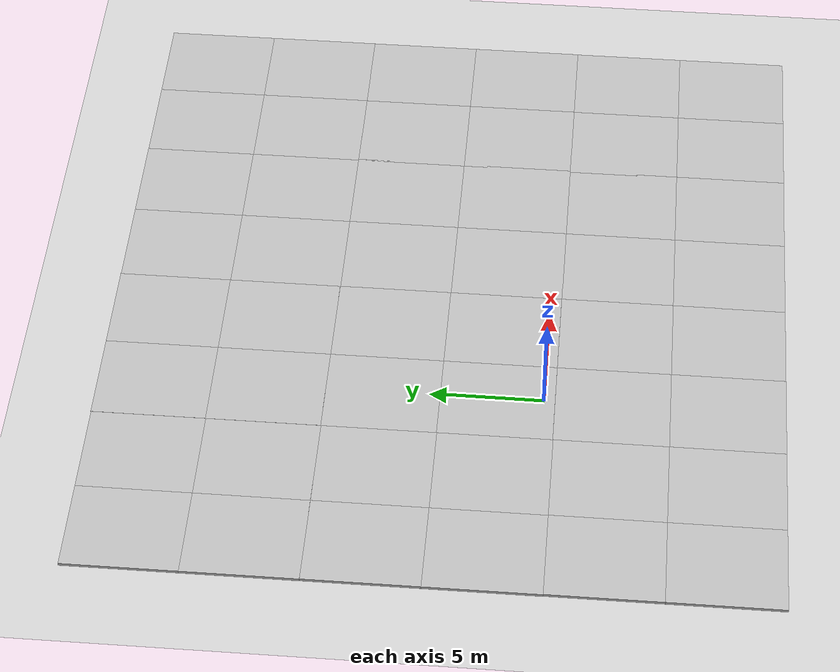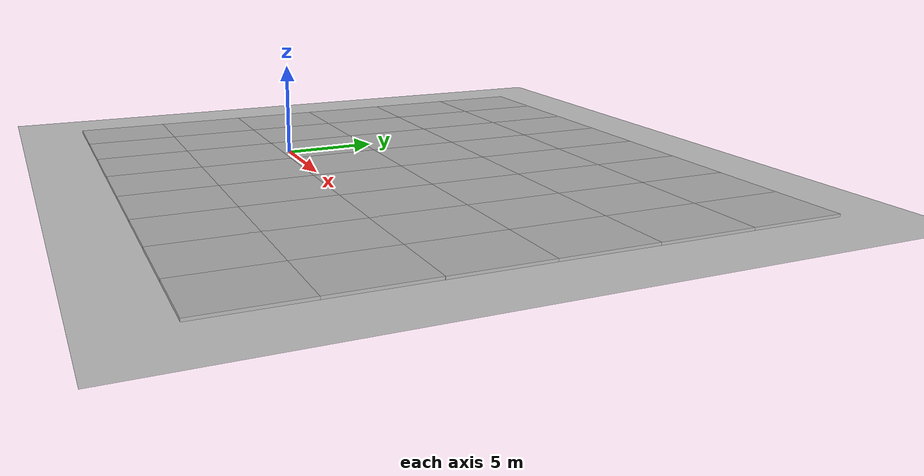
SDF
<sdf version="1.6">
 <world name="default">
  <light name="sun" type="directional">
   <pose>0 0 10 0 -0 0</pose>
   <diffuse>0.8 0.8 0.8 1</diffuse>
   <specular>0.2 0.2 0.2 1</specular>
   <attenuation>
    <range>1000</range>
    <constant>0.9</constant>
    <linear>0.01</linear>
    <quadratic>0.001</quadratic>
   </attenuation>
   <direction>-0.5 0.1 -0.9</direction>
  </light>
  <model name="ground_plane">
   <static>1</static>
   <link name="link">
    <collision name="collision">
     <geometry><plane><normal>0 0 1</normal><size>100 100</size></plane></geometry>
     <surface>
      <contact><collide_bitmask>65535</collide_bitmask></contact>
      <friction><ode><mu>100</mu><mu2>50</mu2></ode></friction>
     </surface>
    </collision>
    <visual name="visual">
     <cast_shadows>0</cast_shadows>
     <geometry><plane><normal>0 0 1</normal><size>100 100</size></plane></geometry>
     <material>
      <script><uri>file://media/materials/scripts/gazebo.material</uri><name>Gazebo/Grey</name></script>
     </material>
    </visual>
   </link>
  </model>
  <gravity>0 0 -9.8</gravity>
  <magnetic_field>6e-06 2.3e-05 -4.2e-05</magnetic_field>
  <atmosphere type="adiabatic"/>
  <physics name="default_physics" default="0" type="ode">
   <max_step_size>0.001</max_step_size>
   <real_time_factor>1</real_time_factor>
   <real_time_update_rate>1000</real_time_update_rate>
  </physics>
  <scene><ambient>0.4 0.4 0.4 1</ambient><background>0.7 0.7 0.7 1</background><shadows>1</shadows></scene>
  <spherical_coordinates>
   <surface_model>EARTH_WGS84</surface_model>
   <latitude_deg>0</latitude_deg>
   <longitude_deg>0</longitude_deg>
   <elevation>0</elevation>
   <heading_deg>0</heading_deg>
  </spherical_coordinates>
  <model name="mud_box">
   <static>1</static>
   <link name="link">
    <collision name="collision"><geometry><box><size>8 10 0.2</size></box></geometry></collision>
    <visual name="visual_1">
     <pose>-2 2.5 0 0 -0 0</pose>
     <cast_shadows>0</cast_shadows>
     <geometry><box><size>4 5 0.2</size></box></geometry>
     <material>
      <script>
       <uri>model://mud_box/materials/scripts</uri>
       <uri>model://mud_box/materials/textures</uri>
       <name>vrc/mud</name>
      </script>
     </material>
    </visual>
    <visual name="visual_2">
     <pose>2 2.5 0 0 -0 0</pose>
     <cast_shadows>0</cast_shadows>
     <geometry><box><size>4 5 0.2</size></box></geometry>
     <material>
      <script>
       <uri>model://mud_box/materials/scripts</uri>
       <uri>model://mud_box/materials/textures</uri>
       <name>vrc/mud</name>
      </script>
     </material>
    </visual>
    <visual name="visual_3">
     <pose>2 -2.5 0 0 -0 0</pose>
     <cast_shadows>0</cast_shadows>
     <geometry><box><size>4 5 0.2</size></box></geometry>
     <material>
      <script>
       <uri>model://mud_box/materials/scripts</uri>
       <uri>model://mud_box/materials/textures</uri>
       <name>vrc/mud</name>
      </script>
     </material>
    </visual>
    <visual name="visual_4">
     <pose>-2 -2.5 0 0 -0 0</pose>
     <cast_shadows>0</cast_shadows>
     <geometry><box><size>4 5 0.2</size></box></geometry>
     <material>
      <script>
       <uri>model://mud_box/materials/scripts</uri>
       <uri>model://mud_box/materials/textures</uri>
       <name>vrc/mud</name>
      </script>
     </material>
    </visual>
   </link>
   <pose>-6.13599 -5.47524 0 0 -0 0</pose>
  </model>
  <model name="mud_box_0">
   <static>1</static>
   <link name="link">
    <collision name="collision"><geometry><box><size>8 10 0.2</size></box></geometry></collision>
    <visual name="visual_1">
     <pose>-2 2.5 0 0 -0 0</pose>
     <cast_shadows>0</cast_shadows>
     <geometry><box><size>4 5 0.2</size></box></geometry>
     <material>
      <script>
       <uri>model://mud_box/materials/scripts</uri>
       <uri>model://mud_box/materials/textures</uri>
       <name>vrc/mud</name>
      </script>
     </material>
    </visual>
    <visual name="visual_2">
     <pose>2 2.5 0 0 -0 0</pose>
     <cast_shadows>0</cast_shadows>
     <geometry><box><size>4 5 0.2</size></box></geometry>
     <material>
      <script>
       <uri>model://mud_box/materials/scripts</uri>
       <uri>model://mud_box/materials/textures</uri>
       <name>vrc/mud</name>
      </script>
     </material>
    </visual>
    <visual name="visual_3">
     <pose>2 -2.5 0 0 -0 0</pose>
     <cast_shadows>0</cast_shadows>
     <geometry><box><size>4 5 0.2</size></box></geometry>
     <material>
      <script>
       <uri>model://mud_box/materials/scripts</uri>
       <uri>model://mud_box/materials/textures</uri>
       <name>vrc/mud</name>
      </script>
     </material>
    </visual>
    <visual name="visual_4">
     <pose>-2 -2.5 0 0 -0 0</pose>
     <cast_shadows>0</cast_shadows>
     <geometry><box><size>4 5 0.2</size></box></geometry>
     <material>
      <script>
       <uri>model://mud_box/materials/scripts</uri>
       <uri>model://mud_box/materials/textures</uri>
       <name>vrc/mud</name>
      </script>
     </material>
    </visual>
   </link>
   <pose>1.85035 -5.47742 0 0 -0 0</pose>
  </model>
  <model name="mud_box_1">
   <static>1</static>
   <link name="link">
    <collision name="collision"><geometry><box><size>8 10 0.2</size></box></geometry></collision>
    <visual name="visual_1">
     <pose>-2 2.5 0 0 -0 0</pose>
     <cast_shadows>0</cast_shadows>
     <geometry><box><size>4 5 0.2</size></box></geometry>
     <material>
      <script>
       <uri>model://mud_box/materials/scripts</uri>
       <uri>model://mud_box/materials/textures</uri>
       <name>vrc/mud</name>
      </script>
     </material>
    </visual>
    <visual name="visual_2">
     <pose>2 2.5 0 0 -0 0</pose>
     <cast_shadows>0</cast_shadows>
     <geometry><box><size>4 5 0.2</size></box></geometry>
     <material>
      <script>
       <uri>model://mud_box/materials/scripts</uri>
       <uri>model://mud_box/materials/textures</uri>
       <name>vrc/mud</name>
      </script>
     </material>
    </visual>
    <visual name="visual_3">
     <pose>2 -2.5 0 0 -0 0</pose>
     <cast_shadows>0</cast_shadows>
     <geometry><box><size>4 5 0.2</size></box></geometry>
     <material>
      <script>
       <uri>model://mud_box/materials/scripts</uri>
       <uri>model://mud_box/materials/textures</uri>
       <name>vrc/mud</name>
      </script>
     </material>
    </visual>
    <visual name="visual_4">
     <pose>-2 -2.5 0 0 -0 0</pose>
     <cast_shadows>0</cast_shadows>
     <geometry><box><size>4 5 0.2</size></box></geometry>
     <material>
      <script>
       <uri>model://mud_box/materials/scripts</uri>
       <uri>model://mud_box/materials/textures</uri>
       <name>vrc/mud</name>
      </script>
     </material>
    </visual>
   </link>
   <pose>9.83633 -5.4772 0 0 -0 0</pose>
  </model>
  <model name="mud_box_2">
   <static>1</static>
   <link name="link">
    <collision name="collision"><geometry><box><size>8 10 0.2</size></box></geometry></collision>
    <visual name="visual_1">
     <pose>-2 2.5 0 0 -0 0</pose>
     <cast_shadows>0</cast_shadows>
     <geometry><box><size>4 5 0.2</size></box></geometry>
     <material>
      <script>
       <uri>model://mud_box/materials/scripts</uri>
       <uri>model://mud_box/materials/textures</uri>
       <name>vrc/mud</name>
      </script>
     </material>
    </visual>
    <visual name="visual_2">
     <pose>2 2.5 0 0 -0 0</pose>
     <cast_shadows>0</cast_shadows>
     <geometry><box><size>4 5 0.2</size></box></geometry>
     <material>
      <script>
       <uri>model://mud_box/materials/scripts</uri>
       <uri>model://mud_box/materials/textures</uri>
       <name>vrc/mud</name>
      </script>
     </material>
    </visual>
    <visual name="visual_3">
     <pose>2 -2.5 0 0 -0 0</pose>
     <cast_shadows>0</cast_shadows>
     <geometry><box><size>4 5 0.2</size></box></geometry>
     <material>
      <script>
       <uri>model://mud_box/materials/scripts</uri>
       <uri>model://mud_box/materials/textures</uri>
       <name>vrc/mud</name>
      </script>
     </material>
    </visual>
    <visual name="visual_4">
     <pose>-2 -2.5 0 0 -0 0</pose>
     <cast_shadows>0</cast_shadows>
     <geometry><box><size>4 5 0.2</size></box></geometry>
     <material>
      <script>
       <uri>model://mud_box/materials/scripts</uri>
       <uri>model://mud_box/materials/textures</uri>
       <name>vrc/mud</name>
      </script>
     </material>
    </visual>
   </link>
   <pose>9.84414 4.50985 0 0 -0 0</pose>
  </model>
  <model name="mud_box_3">
   <static>1</static>
   <link name="link">
    <collision name="collision"><geometry><box><size>8 10 0.2</size></box></geometry></collision>
    <visual name="visual_1">
     <pose>-2 2.5 0 0 -0 0</pose>
     <cast_shadows>0</cast_shadows>
     <geometry><box><size>4 5 0.2</size></box></geometry>
     <material>
      <script>
       <uri>model://mud_box/materials/scripts</uri>
       <uri>model://mud_box/materials/textures</uri>
       <name>vrc/mud</name>
      </script>
     </material>
    </visual>
    <visual name="visual_2">
     <pose>2 2.5 0 0 -0 0</pose>
     <cast_shadows>0</cast_shadows>
     <geometry><box><size>4 5 0.2</size></box></geometry>
     <material>
      <script>
       <uri>model://mud_box/materials/scripts</uri>
       <uri>model://mud_box/materials/textures</uri>
       <name>vrc/mud</name>
      </script>
     </material>
    </visual>
    <visual name="visual_3">
     <pose>2 -2.5 0 0 -0 0</pose>
     <cast_shadows>0</cast_shadows>
     <geometry><box><size>4 5 0.2</size></box></geometry>
     <material>
      <script>
       <uri>model://mud_box/materials/scripts</uri>
       <uri>model://mud_box/materials/textures</uri>
       <name>vrc/mud</name>
      </script>
     </material>
    </visual>
    <visual name="visual_4">
     <pose>-2 -2.5 0 0 -0 0</pose>
     <cast_shadows>0</cast_shadows>
     <geometry><box><size>4 5 0.2</size></box></geometry>
     <material>
      <script>
       <uri>model://mud_box/materials/scripts</uri>
       <uri>model://mud_box/materials/textures</uri>
       <name>vrc/mud</name>
      </script>
     </material>
    </visual>
   </link>
   <pose>1.84726 4.5242 0 0 -0 0</pose>
  </model>
  <model name="mud_box_4">
   <static>1</static>
   <link name="link">
    <collision name="collision"><geometry><box><size>8 10 0.2</size></box></geometry></collision>
    <visual name="visual_1">
     <pose>-2 2.5 0 0 -0 0</pose>
     <cast_shadows>0</cast_shadows>
     <geometry><box><size>4 5 0.2</size></box></geometry>
     <material>
      <script>
       <uri>model://mud_box/materials/scripts</uri>
       <uri>model://mud_box/materials/textures</uri>
       <name>vrc/mud</name>
      </script>
     </material>
    </visual>
    <visual name="visual_2">
     <pose>2 2.5 0 0 -0 0</pose>
     <cast_shadows>0</cast_shadows>
     <geometry><box><size>4 5 0.2</size></box></geometry>
     <material>
      <script>
       <uri>model://mud_box/materials/scripts</uri>
       <uri>model://mud_box/materials/textures</uri>
       <name>vrc/mud</name>
      </script>
     </material>
    </visual>
    <visual name="visual_3">
     <pose>2 -2.5 0 0 -0 0</pose>
     <cast_shadows>0</cast_shadows>
     <geometry><box><size>4 5 0.2</size></box></geometry>
     <material>
      <script>
       <uri>model://mud_box/materials/scripts</uri>
       <uri>model://mud_box/materials/textures</uri>
       <name>vrc/mud</name>
      </script>
     </material>
    </visual>
    <visual name="visual_4">
     <pose>-2 -2.5 0 0 -0 0</pose>
     <cast_shadows>0</cast_shadows>
     <geometry><box><size>4 5 0.2</size></box></geometry>
     <material>
      <script>
       <uri>model://mud_box/materials/scripts</uri>
       <uri>model://mud_box/materials/textures</uri>
       <name>vrc/mud</name>
      </script>
     </material>
    </visual>
   </link>
   <pose>-6.14863 4.50493 0 0 -0 0</pose>
  </model>
  <model name="mud_box_5">
   <static>1</static>
   <link name="link">
    <collision name="collision"><geometry><box><size>8 10 0.2</size></box></geometry></collision>
    <visual name="visual_1">
     <pose>-2 2.5 0 0 -0 0</pose>
     <cast_shadows>0</cast_shadows>
     <geometry><box><size>4 5 0.2</size></box></geometry>
     <material>
      <script>
       <uri>model://mud_box/materials/scripts</uri>
       <uri>model://mud_box/materials/textures</uri>
       <name>vrc/mud</name>
      </script>
     </material>
    </visual>
    <visual name="visual_2">
     <pose>2 2.5 0 0 -0 0</pose>
     <cast_shadows>0</cast_shadows>
     <geometry><box><size>4 5 0.2</size></box></geometry>
     <material>
      <script>
       <uri>model://mud_box/materials/scripts</uri>
       <uri>model://mud_box/materials/textures</uri>
       <name>vrc/mud</name>
      </script>
     </material>
    </visual>
    <visual name="visual_3">
     <pose>2 -2.5 0 0 -0 0</pose>
     <cast_shadows>0</cast_shadows>
     <geometry><box><size>4 5 0.2</size></box></geometry>
     <material>
      <script>
       <uri>model://mud_box/materials/scripts</uri>
       <uri>model://mud_box/materials/textures</uri>
       <name>vrc/mud</name>
      </script>
     </material>
    </visual>
    <visual name="visual_4">
     <pose>-2 -2.5 0 0 -0 0</pose>
     <cast_shadows>0</cast_shadows>
     <geometry><box><size>4 5 0.2</size></box></geometry>
     <material>
      <script>
       <uri>model://mud_box/materials/scripts</uri>
       <uri>model://mud_box/materials/textures</uri>
       <name>vrc/mud</name>
      </script>
     </material>
    </visual>
   </link>
   <pose>-6.15327 14.5062 0 0 -0 0</pose>
  </model>
  <model name="mud_box_6">
   <static>1</static>
   <link name="link">
    <collision name="collision"><geometry><box><size>8 10 0.2</size></box></geometry></collision>
    <visual name="visual_1">
     <pose>-2 2.5 0 0 -0 0</pose>
     <cast_shadows>0</cast_shadows>
     <geometry><box><size>4 5 0.2</size></box></geometry>
     <material>
      <script>
       <uri>model://mud_box/materials/scripts</uri>
       <uri>model://mud_box/materials/textures</uri>
       <name>vrc/mud</name>
      </script>
     </material>
    </visual>
    <visual name="visual_2">
     <pose>2 2.5 0 0 -0 0</pose>
     <cast_shadows>0</cast_shadows>
     <geometry><box><size>4 5 0.2</size></box></geometry>
     <material>
      <script>
       <uri>model://mud_box/materials/scripts</uri>
       <uri>model://mud_box/materials/textures</uri>
       <name>vrc/mud</name>
      </script>
     </material>
    </visual>
    <visual name="visual_3">
     <pose>2 -2.5 0 0 -0 0</pose>
     <cast_shadows>0</cast_shadows>
     <geometry><box><size>4 5 0.2</size></box></geometry>
     <material>
      <script>
       <uri>model://mud_box/materials/scripts</uri>
       <uri>model://mud_box/materials/textures</uri>
       <name>vrc/mud</name>
      </script>
     </material>
    </visual>
    <visual name="visual_4">
     <pose>-2 -2.5 0 0 -0 0</pose>
     <cast_shadows>0</cast_shadows>
     <geometry><box><size>4 5 0.2</size></box></geometry>
     <material>
      <script>
       <uri>model://mud_box/materials/scripts</uri>
       <uri>model://mud_box/materials/textures</uri>
       <name>vrc/mud</name>
      </script>
     </material>
    </visual>
   </link>
   <pose>1.8495 14.5248 0 0 -0 0</pose>
  </model>
  <model name="mud_box_7">
   <static>1</static>
   <link name="link">
    <collision name="collision"><geometry><box><size>8 10 0.2</size></box></geometry></collision>
    <visual name="visual_1">
     <pose>-2 2.5 0 0 -0 0</pose>
     <cast_shadows>0</cast_shadows>
     <geometry><box><size>4 5 0.2</size></box></geometry>
     <material>
      <script>
       <uri>model://mud_box/materials/scripts</uri>
       <uri>model://mud_box/materials/textures</uri>
       <name>vrc/mud</name>
      </script>
     </material>
    </visual>
    <visual name="visual_2">
     <pose>2 2.5 0 0 -0 0</pose>
     <cast_shadows>0</cast_shadows>
     <geometry><box><size>4 5 0.2</size></box></geometry>
     <material>
      <script>
       <uri>model://mud_box/materials/scripts</uri>
       <uri>model://mud_box/materials/textures</uri>
       <name>vrc/mud</name>
      </script>
     </material>
    </visual>
    <visual name="visual_3">
     <pose>2 -2.5 0 0 -0 0</pose>
     <cast_shadows>0</cast_shadows>
     <geometry><box><size>4 5 0.2</size></box></geometry>
     <material>
      <script>
       <uri>model://mud_box/materials/scripts</uri>
       <uri>model://mud_box/materials/textures</uri>
       <name>vrc/mud</name>
      </script>
     </material>
    </visual>
    <visual name="visual_4">
     <pose>-2 -2.5 0 0 -0 0</pose>
     <cast_shadows>0</cast_shadows>
     <geometry><box><size>4 5 0.2</size></box></geometry>
     <material>
      <script>
       <uri>model://mud_box/materials/scripts</uri>
       <uri>model://mud_box/materials/textures</uri>
       <name>vrc/mud</name>
      </script>
     </material>
    </visual>
   </link>
   <pose>9.83707 14.5093 0 0 -0 0</pose>
  </model>
  <model name="mud_box_8">
   <static>1</static>
   <link name="link">
    <collision name="collision"><geometry><box><size>8 10 0.2</size></box></geometry></collision>
    <visual name="visual_1">
     <pose>-2 2.5 0 0 -0 0</pose>
     <cast_shadows>0</cast_shadows>
     <geometry><box><size>4 5 0.2</size></box></geometry>
     <material>
      <script>
       <uri>model://mud_box/materials/scripts</uri>
       <uri>model://mud_box/materials/textures</uri>
       <name>vrc/mud</name>
      </script>
     </material>
    </visual>
    <visual name="visual_2">
     <pose>2 2.5 0 0 -0 0</pose>
     <cast_shadows>0</cast_shadows>
     <geometry><box><size>4 5 0.2</size></box></geometry>
     <material>
      <script>
       <uri>model://mud_box/materials/scripts</uri>
       <uri>model://mud_box/materials/textures</uri>
       <name>vrc/mud</name>
      </script>
     </material>
    </visual>
    <visual name="visual_3">
     <pose>2 -2.5 0 0 -0 0</pose>
     <cast_shadows>0</cast_shadows>
     <geometry><box><size>4 5 0.2</size></box></geometry>
     <material>
      <script>
       <uri>model://mud_box/materials/scripts</uri>
       <uri>model://mud_box/materials/textures</uri>
       <name>vrc/mud</name>
      </script>
     </material>
    </visual>
    <visual name="visual_4">
     <pose>-2 -2.5 0 0 -0 0</pose>
     <cast_shadows>0</cast_shadows>
     <geometry><box><size>4 5 0.2</size></box></geometry>
     <material>
      <script>
       <uri>model://mud_box/materials/scripts</uri>
       <uri>model://mud_box/materials/textures</uri>
       <name>vrc/mud</name>
      </script>
     </material>
    </visual>
   </link>
   <pose>17.7674 -5.48327 0 0 -0 0</pose>
  </model>
  <model name="mud_box_9">
   <static>1</static>
   <link name="link">
    <collision name="collision"><geometry><box><size>8 10 0.2</size></box></geometry></collision>
    <visual name="visual_1">
     <pose>-2 2.5 0 0 -0 0</pose>
     <cast_shadows>0</cast_shadows>
     <geometry><box><size>4 5 0.2</size></box></geometry>
     <material>
      <script>
       <uri>model://mud_box/materials/scripts</uri>
       <uri>model://mud_box/materials/textures</uri>
       <name>vrc/mud</name>
      </script>
     </material>
    </visual>
    <visual name="visual_2">
     <pose>2 2.5 0 0 -0 0</pose>
     <cast_shadows>0</cast_shadows>
     <geometry><box><size>4 5 0.2</size></box></geometry>
     <material>
      <script>
       <uri>model://mud_box/materials/scripts</uri>
       <uri>model://mud_box/materials/textures</uri>
       <name>vrc/mud</name>
      </script>
     </material>
    </visual>
    <visual name="visual_3">
     <pose>2 -2.5 0 0 -0 0</pose>
     <cast_shadows>0</cast_shadows>
     <geometry><box><size>4 5 0.2</size></box></geometry>
     <material>
      <script>
       <uri>model://mud_box/materials/scripts</uri>
       <uri>model://mud_box/materials/textures</uri>
       <name>vrc/mud</name>
      </script>
     </material>
    </visual>
    <visual name="visual_4">
     <pose>-2 -2.5 0 0 -0 0</pose>
     <cast_shadows>0</cast_shadows>
     <geometry><box><size>4 5 0.2</size></box></geometry>
     <material>
      <script>
       <uri>model://mud_box/materials/scripts</uri>
       <uri>model://mud_box/materials/textures</uri>
       <name>vrc/mud</name>
      </script>
     </material>
    </visual>
   </link>
   <pose>17.7794 4.50845 0 0 -0 0</pose>
  </model>
  <model name="mud_box_10">
   <static>1</static>
   <link name="link">
    <collision name="collision"><geometry><box><size>8 10 0.2</size></box></geometry></collision>
    <visual name="visual_1">
     <pose>-2 2.5 0 0 -0 0</pose>
     <cast_shadows>0</cast_shadows>
     <geometry><box><size>4 5 0.2</size></box></geometry>
     <material>
      <script>
       <uri>model://mud_box/materials/scripts</uri>
       <uri>model://mud_box/materials/textures</uri>
       <name>vrc/mud</name>
      </script>
     </material>
    </visual>
    <visual name="visual_2">
     <pose>2 2.5 0 0 -0 0</pose>
     <cast_shadows>0</cast_shadows>
     <geometry><box><size>4 5 0.2</size></box></geometry>
     <material>
      <script>
       <uri>model://mud_box/materials/scripts</uri>
       <uri>model://mud_box/materials/textures</uri>
       <name>vrc/mud</name>
      </script>
     </material>
    </visual>
    <visual name="visual_3">
     <pose>2 -2.5 0 0 -0 0</pose>
     <cast_shadows>0</cast_shadows>
     <geometry><box><size>4 5 0.2</size></box></geometry>
     <material>
      <script>
       <uri>model://mud_box/materials/scripts</uri>
       <uri>model://mud_box/materials/textures</uri>
       <name>vrc/mud</name>
      </script>
     </material>
    </visual>
    <visual name="visual_4">
     <pose>-2 -2.5 0 0 -0 0</pose>
     <cast_shadows>0</cast_shadows>
     <geometry><box><size>4 5 0.2</size></box></geometry>
     <material>
      <script>
       <uri>model://mud_box/materials/scripts</uri>
       <uri>model://mud_box/materials/textures</uri>
       <name>vrc/mud</name>
      </script>
     </material>
    </visual>
   </link>
   <pose>17.7849 14.5001 0 0 -0 0</pose>
  </model>
 </world>
</sdf>
